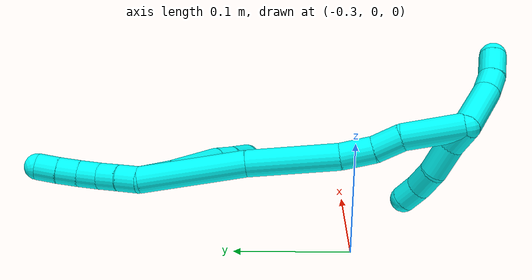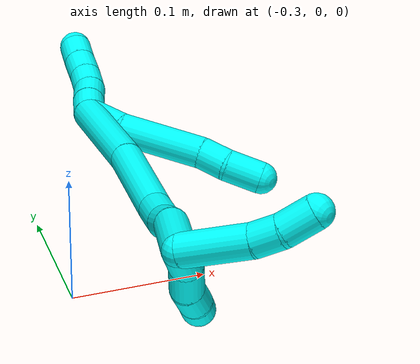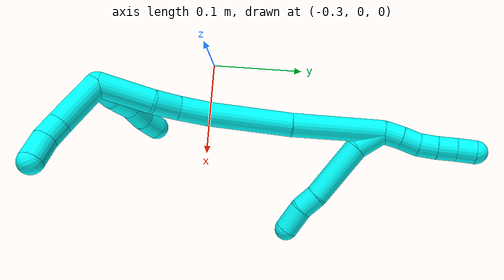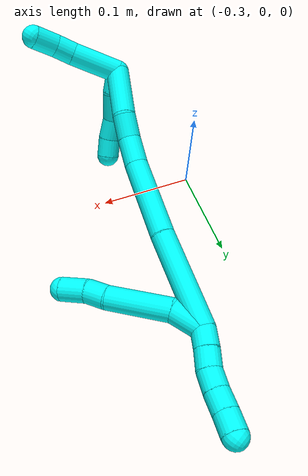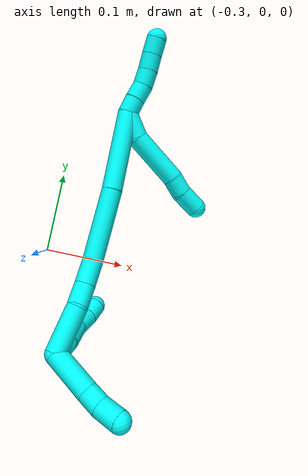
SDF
<sdf version="1.7">
 <world name="default">
  <model name="3">
   <static>0</static>
   <link name="3">
    <collision name="collision-cylinder-e_1_2_8">
     <pose>-0.000571 0.00235 -0.016317 -2.99858 -0.034611 0.474161</pose>
     <geometry><cylinder><radius>0.0125</radius><length>0.03299</length></cylinder></geometry>
     <surface>
      <friction><ode><mu>1.16</mu><mu2>1.16</mu2><slip1>0</slip1><slip2>0</slip2></ode></friction>
      <contact><ode><kp>1e+06</kp><kd>1</kd><max_vel>0</max_vel><min_depth>0.001</min_depth></ode></contact>
     </surface>
    </collision>
    <visual name="visual-cylinder-e_1_2_8">
     <pose>-0.000571 0.00235 -0.016317 -2.99858 -0.034611 0.474161</pose>
     <geometry><cylinder><radius>0.0125</radius><length>0.03299</length></cylinder></geometry>
     <material><ambient>0.003922 1 0.996078 1</ambient></material>
    </visual>
    <collision name="collision-cylinder-e_2_8_9">
     <pose>-0.000441 0.020253 -0.062017 -2.65475 0.021063 -0.084767</pose>
     <geometry><cylinder><radius>0.0125</radius><length>0.066507</length></cylinder></geometry>
     <surface>
      <friction><ode><mu>1.16</mu><mu2>1.16</mu2><slip1>0</slip1><slip2>0</slip2></ode></friction>
      <contact><ode><kp>1e+06</kp><kd>1</kd><max_vel>0</max_vel><min_depth>0.001</min_depth></ode></contact>
     </surface>
    </collision>
    <visual name="visual-cylinder-e_2_8_9">
     <pose>-0.000441 0.020253 -0.062017 -2.65475 0.021063 -0.084767</pose>
     <geometry><cylinder><radius>0.0125</radius><length>0.066507</length></cylinder></geometry>
     <material><ambient>0.003922 1 0.996078 1</ambient></material>
    </visual>
    <collision name="collision-cylinder-e_3_9_10">
     <pose>-0.000986 0.039615 -0.101746 -2.78883 -0.112499 0.612016</pose>
     <geometry><cylinder><radius>0.0125</radius><length>0.02219</length></cylinder></geometry>
     <surface>
      <friction><ode><mu>1.16</mu><mu2>1.16</mu2><slip1>0</slip1><slip2>0</slip2></ode></friction>
      <contact><ode><kp>1e+06</kp><kd>1</kd><max_vel>0</max_vel><min_depth>0.001</min_depth></ode></contact>
     </surface>
    </collision>
    <visual name="visual-cylinder-e_3_9_10">
     <pose>-0.000986 0.039615 -0.101746 -2.78883 -0.112499 0.612016</pose>
     <geometry><cylinder><radius>0.0125</radius><length>0.02219</length></cylinder></geometry>
     <material><ambient>0.003922 1 0.996078 1</ambient></material>
    </visual>
    <collision name="collision-cylinder-e_4_10_6">
     <pose>-0.0032 0.051207 -0.123878 -2.55795 -0.068407 0.226834</pose>
     <geometry><cylinder><radius>0.0125</radius><length>0.028313</length></cylinder></geometry>
     <surface>
      <friction><ode><mu>1.16</mu><mu2>1.16</mu2><slip1>0</slip1><slip2>0</slip2></ode></friction>
      <contact><ode><kp>1e+06</kp><kd>1</kd><max_vel>0</max_vel><min_depth>0.001</min_depth></ode></contact>
     </surface>
    </collision>
    <visual name="visual-cylinder-e_4_10_6">
     <pose>-0.0032 0.051207 -0.123878 -2.55795 -0.068407 0.226834</pose>
     <geometry><cylinder><radius>0.0125</radius><length>0.028313</length></cylinder></geometry>
     <material><ambient>0.003922 1 0.996078 1</ambient></material>
    </visual>
    <collision name="collision-cylinder-e_1_2_11">
     <pose>0.002663 0.006169 0.007406 -0.694499 0.269536 -0.098065</pose>
     <geometry><cylinder><radius>0.0125</radius><length>0.02</length></cylinder></geometry>
     <surface>
      <friction><ode><mu>1.16</mu><mu2>1.16</mu2><slip1>0</slip1><slip2>0</slip2></ode></friction>
      <contact><ode><kp>1e+06</kp><kd>1</kd><max_vel>0</max_vel><min_depth>0.001</min_depth></ode></contact>
     </surface>
    </collision>
    <visual name="visual-cylinder-e_1_2_11">
     <pose>0.002663 0.006169 0.007406 -0.694499 0.269536 -0.098065</pose>
     <geometry><cylinder><radius>0.0125</radius><length>0.02</length></cylinder></geometry>
     <material><ambient>0.003922 1 0.996078 1</ambient></material>
    </visual>
    <collision name="collision-cylinder-e_2_11_12">
     <pose>0.007792 0.019072 0.021782 -0.768235 0.249212 -0.101169</pose>
     <geometry><cylinder><radius>0.0125</radius><length>0.02</length></cylinder></geometry>
     <surface>
      <friction><ode><mu>1.16</mu><mu2>1.16</mu2><slip1>0</slip1><slip2>0</slip2></ode></friction>
      <contact><ode><kp>1e+06</kp><kd>1</kd><max_vel>0</max_vel><min_depth>0.001</min_depth></ode></contact>
     </surface>
    </collision>
    <visual name="visual-cylinder-e_2_11_12">
     <pose>0.007792 0.019072 0.021782 -0.768235 0.249212 -0.101169</pose>
     <geometry><cylinder><radius>0.0125</radius><length>0.02</length></cylinder></geometry>
     <material><ambient>0.003922 1 0.996078 1</ambient></material>
    </visual>
    <collision name="collision-cylinder-e_3_12_13">
     <pose>0.013368 0.030602 0.036956 -0.528981 0.316147 -0.086291</pose>
     <geometry><cylinder><radius>0.0125</radius><length>0.02</length></cylinder></geometry>
     <surface>
      <friction><ode><mu>1.16</mu><mu2>1.16</mu2><slip1>0</slip1><slip2>0</slip2></ode></friction>
      <contact><ode><kp>1e+06</kp><kd>1</kd><max_vel>0</max_vel><min_depth>0.001</min_depth></ode></contact>
     </surface>
    </collision>
    <visual name="visual-cylinder-e_3_12_13">
     <pose>0.013368 0.030602 0.036956 -0.528981 0.316147 -0.086291</pose>
     <geometry><cylinder><radius>0.0125</radius><length>0.02</length></cylinder></geometry>
     <material><ambient>0.003922 1 0.996078 1</ambient></material>
    </visual>
    <collision name="collision-cylinder-e_4_13_14">
     <pose>0.019899 0.03942 0.053654 -0.442188 0.34928 -0.079274</pose>
     <geometry><cylinder><radius>0.0125</radius><length>0.02</length></cylinder></geometry>
     <surface>
      <friction><ode><mu>1.16</mu><mu2>1.16</mu2><slip1>0</slip1><slip2>0</slip2></ode></friction>
      <contact><ode><kp>1e+06</kp><kd>1</kd><max_vel>0</max_vel><min_depth>0.001</min_depth></ode></contact>
     </surface>
    </collision>
    <visual name="visual-cylinder-e_4_13_14">
     <pose>0.019899 0.03942 0.053654 -0.442188 0.34928 -0.079274</pose>
     <geometry><cylinder><radius>0.0125</radius><length>0.02</length></cylinder></geometry>
     <material><ambient>0.003922 1 0.996078 1</ambient></material>
    </visual>
    <collision name="collision-cylinder-e_5_14_5">
     <pose>0.027076 0.047636 0.070411 -0.469768 0.384949 -0.093206</pose>
     <geometry><cylinder><radius>0.0125</radius><length>0.02</length></cylinder></geometry>
     <surface>
      <friction><ode><mu>1.16</mu><mu2>1.16</mu2><slip1>0</slip1><slip2>0</slip2></ode></friction>
      <contact><ode><kp>1e+06</kp><kd>1</kd><max_vel>0</max_vel><min_depth>0.001</min_depth></ode></contact>
     </surface>
    </collision>
    <visual name="visual-cylinder-e_5_14_5">
     <pose>0.027076 0.047636 0.070411 -0.469768 0.384949 -0.093206</pose>
     <geometry><cylinder><radius>0.0125</radius><length>0.02</length></cylinder></geometry>
     <material><ambient>0.003922 1 0.996078 1</ambient></material>
    </visual>
    <collision name="collision-cylinder-e_1_2_15">
     <pose>-0.002388 -0.023424 -0.044065 2.653 -0.047818 -0.191283</pose>
     <geometry><cylinder><radius>0.0125</radius><length>0.099923</length></cylinder></geometry>
     <surface>
      <friction><ode><mu>1.16</mu><mu2>1.16</mu2><slip1>0</slip1><slip2>0</slip2></ode></friction>
      <contact><ode><kp>1e+06</kp><kd>1</kd><max_vel>0</max_vel><min_depth>0.001</min_depth></ode></contact>
     </surface>
    </collision>
    <visual name="visual-cylinder-e_1_2_15">
     <pose>-0.002388 -0.023424 -0.044065 2.653 -0.047818 -0.191283</pose>
     <geometry><cylinder><radius>0.0125</radius><length>0.099923</length></cylinder></geometry>
     <material><ambient>0.003922 1 0.996078 1</ambient></material>
    </visual>
    <collision name="collision-cylinder-e_2_15_16">
     <pose>-0.010088 -0.068382 -0.125023 2.61324 -0.123702 -0.450141</pose>
     <geometry><cylinder><radius>0.0125</radius><length>0.086091</length></cylinder></geometry>
     <surface>
      <friction><ode><mu>1.16</mu><mu2>1.16</mu2><slip1>0</slip1><slip2>0</slip2></ode></friction>
      <contact><ode><kp>1e+06</kp><kd>1</kd><max_vel>0</max_vel><min_depth>0.001</min_depth></ode></contact>
     </surface>
    </collision>
    <visual name="visual-cylinder-e_2_15_16">
     <pose>-0.010088 -0.068382 -0.125023 2.61324 -0.123702 -0.450141</pose>
     <geometry><cylinder><radius>0.0125</radius><length>0.086091</length></cylinder></geometry>
     <material><ambient>0.003922 1 0.996078 1</ambient></material>
    </visual>
    <collision name="collision-cylinder-e_3_16_17">
     <pose>-0.01515 -0.099036 -0.174657 2.5204 0.015859 0.049399</pose>
     <geometry><cylinder><radius>0.0125</radius><length>0.031344</length></cylinder></geometry>
     <surface>
      <friction><ode><mu>1.16</mu><mu2>1.16</mu2><slip1>0</slip1><slip2>0</slip2></ode></friction>
      <contact><ode><kp>1e+06</kp><kd>1</kd><max_vel>0</max_vel><min_depth>0.001</min_depth></ode></contact>
     </surface>
    </collision>
    <visual name="visual-cylinder-e_3_16_17">
     <pose>-0.01515 -0.099036 -0.174657 2.5204 0.015859 0.049399</pose>
     <geometry><cylinder><radius>0.0125</radius><length>0.031344</length></cylinder></geometry>
     <material><ambient>0.003922 1 0.996078 1</ambient></material>
    </visual>
    <collision name="collision-cylinder-e_4_17_18">
     <pose>-0.011737 -0.116734 -0.197402 2.4327 0.235689 0.619257</pose>
     <geometry><cylinder><radius>0.0125</radius><length>0.027102</length></cylinder></geometry>
     <surface>
      <friction><ode><mu>1.16</mu><mu2>1.16</mu2><slip1>0</slip1><slip2>0</slip2></ode></friction>
      <contact><ode><kp>1e+06</kp><kd>1</kd><max_vel>0</max_vel><min_depth>0.001</min_depth></ode></contact>
     </surface>
    </collision>
    <visual name="visual-cylinder-e_4_17_18">
     <pose>-0.011737 -0.116734 -0.197402 2.4327 0.235689 0.619257</pose>
     <geometry><cylinder><radius>0.0125</radius><length>0.027102</length></cylinder></geometry>
     <material><ambient>0.003922 1 0.996078 1</ambient></material>
    </visual>
    <collision name="collision-cylinder-e_5_18_1">
     <pose>-0.009124 -0.143845 -0.228076 2.4107 -0.019832 -0.051819</pose>
     <geometry><cylinder><radius>0.0125</radius><length>0.05554</length></cylinder></geometry>
     <surface>
      <friction><ode><mu>1.16</mu><mu2>1.16</mu2><slip1>0</slip1><slip2>0</slip2></ode></friction>
      <contact><ode><kp>1e+06</kp><kd>1</kd><max_vel>0</max_vel><min_depth>0.001</min_depth></ode></contact>
     </surface>
    </collision>
    <visual name="visual-cylinder-e_5_18_1">
     <pose>-0.009124 -0.143845 -0.228076 2.4107 -0.019832 -0.051819</pose>
     <geometry><cylinder><radius>0.0125</radius><length>0.05554</length></cylinder></geometry>
     <material><ambient>0.003922 1 0.996078 1</ambient></material>
    </visual>
    <collision name="collision-cylinder-e_1_1_19">
     <pose>-0.016653 -0.152918 -0.245999 -1.28787 -0.616323 0.469089</pose>
     <geometry><cylinder><radius>0.0125</radius><length>0.024147</length></cylinder></geometry>
     <surface>
      <friction><ode><mu>1.16</mu><mu2>1.16</mu2><slip1>0</slip1><slip2>0</slip2></ode></friction>
      <contact><ode><kp>1e+06</kp><kd>1</kd><max_vel>0</max_vel><min_depth>0.001</min_depth></ode></contact>
     </surface>
    </collision>
    <visual name="visual-cylinder-e_1_1_19">
     <pose>-0.016653 -0.152918 -0.245999 -1.28787 -0.616323 0.469089</pose>
     <geometry><cylinder><radius>0.0125</radius><length>0.024147</length></cylinder></geometry>
     <material><ambient>0.003922 1 0.996078 1</ambient></material>
    </visual>
    <collision name="collision-cylinder-e_2_19_20">
     <pose>-0.034562 -0.133502 -0.238622 -1.13581 -0.783177 0.515186</pose>
     <geometry><cylinder><radius>0.0125</radius><length>0.030982</length></cylinder></geometry>
     <surface>
      <friction><ode><mu>1.16</mu><mu2>1.16</mu2><slip1>0</slip1><slip2>0</slip2></ode></friction>
      <contact><ode><kp>1e+06</kp><kd>1</kd><max_vel>0</max_vel><min_depth>0.001</min_depth></ode></contact>
     </surface>
    </collision>
    <visual name="visual-cylinder-e_2_19_20">
     <pose>-0.034562 -0.133502 -0.238622 -1.13581 -0.783177 0.515186</pose>
     <geometry><cylinder><radius>0.0125</radius><length>0.030982</length></cylinder></geometry>
     <material><ambient>0.003922 1 0.996078 1</ambient></material>
    </visual>
    <collision name="collision-cylinder-e_3_20_21">
     <pose>-0.052035 -0.113744 -0.231582 -1.32934 -0.575086 0.455451</pose>
     <geometry><cylinder><radius>0.0125</radius><length>0.024061</length></cylinder></geometry>
     <surface>
      <friction><ode><mu>1.16</mu><mu2>1.16</mu2><slip1>0</slip1><slip2>0</slip2></ode></friction>
      <contact><ode><kp>1e+06</kp><kd>1</kd><max_vel>0</max_vel><min_depth>0.001</min_depth></ode></contact>
     </surface>
    </collision>
    <visual name="visual-cylinder-e_3_20_21">
     <pose>-0.052035 -0.113744 -0.231582 -1.32934 -0.575086 0.455451</pose>
     <geometry><cylinder><radius>0.0125</radius><length>0.024061</length></cylinder></geometry>
     <material><ambient>0.003922 1 0.996078 1</ambient></material>
    </visual>
    <collision name="collision-cylinder-e_4_21_4">
     <pose>-0.063518 -0.095672 -0.225235 -1.12679 -0.494697 0.316363</pose>
     <geometry><cylinder><radius>0.0125</radius><length>0.02081</length></cylinder></geometry>
     <surface>
      <friction><ode><mu>1.16</mu><mu2>1.16</mu2><slip1>0</slip1><slip2>0</slip2></ode></friction>
      <contact><ode><kp>1e+06</kp><kd>1</kd><max_vel>0</max_vel><min_depth>0.001</min_depth></ode></contact>
     </surface>
    </collision>
    <visual name="visual-cylinder-e_4_21_4">
     <pose>-0.063518 -0.095672 -0.225235 -1.12679 -0.494697 0.316363</pose>
     <geometry><cylinder><radius>0.0125</radius><length>0.02081</length></cylinder></geometry>
     <material><ambient>0.003922 1 0.996078 1</ambient></material>
    </visual>
    <collision name="collision-cylinder-e_1_1_22">
     <pose>0.002376 -0.153796 -0.270679 -2.76853 0.472957 -1.81284</pose>
     <geometry><cylinder><radius>0.0125</radius><length>0.052907</length></cylinder></geometry>
     <surface>
      <friction><ode><mu>1.16</mu><mu2>1.16</mu2><slip1>0</slip1><slip2>0</slip2></ode></friction>
      <contact><ode><kp>1e+06</kp><kd>1</kd><max_vel>0</max_vel><min_depth>0.001</min_depth></ode></contact>
     </surface>
    </collision>
    <visual name="visual-cylinder-e_1_1_22">
     <pose>0.002376 -0.153796 -0.270679 -2.76853 0.472957 -1.81284</pose>
     <geometry><cylinder><radius>0.0125</radius><length>0.052907</length></cylinder></geometry>
     <material><ambient>0.003922 1 0.996078 1</ambient></material>
    </visual>
    <collision name="collision-cylinder-e_2_22_23">
     <pose>0.020799 -0.142004 -0.300411 -2.75147 0.646951 -2.07652</pose>
     <geometry><cylinder><radius>0.0125</radius><length>0.021146</length></cylinder></geometry>
     <surface>
      <friction><ode><mu>1.16</mu><mu2>1.16</mu2><slip1>0</slip1><slip2>0</slip2></ode></friction>
      <contact><ode><kp>1e+06</kp><kd>1</kd><max_vel>0</max_vel><min_depth>0.001</min_depth></ode></contact>
     </surface>
    </collision>
    <visual name="visual-cylinder-e_2_22_23">
     <pose>0.020799 -0.142004 -0.300411 -2.75147 0.646951 -2.07652</pose>
     <geometry><cylinder><radius>0.0125</radius><length>0.021146</length></cylinder></geometry>
     <material><ambient>0.003922 1 0.996078 1</ambient></material>
    </visual>
    <collision name="collision-cylinder-e_3_23_3">
     <pose>0.036685 -0.133875 -0.315534 -2.54976 0.823197 -1.92231</pose>
     <geometry><cylinder><radius>0.0125</radius><length>0.025948</length></cylinder></geometry>
     <surface>
      <friction><ode><mu>1.16</mu><mu2>1.16</mu2><slip1>0</slip1><slip2>0</slip2></ode></friction>
      <contact><ode><kp>1e+06</kp><kd>1</kd><max_vel>0</max_vel><min_depth>0.001</min_depth></ode></contact>
     </surface>
    </collision>
    <visual name="visual-cylinder-e_3_23_3">
     <pose>0.036685 -0.133875 -0.315534 -2.54976 0.823197 -1.92231</pose>
     <geometry><cylinder><radius>0.0125</radius><length>0.025948</length></cylinder></geometry>
     <material><ambient>0.003922 1 0.996078 1</ambient></material>
    </visual>
    <collision name="collision-sphere-3">
     <pose>0.046199 -0.128954 -0.322854 0 -0 0</pose>
     <geometry><sphere><radius>0.0125</radius></sphere></geometry>
     <surface>
      <friction><ode><mu>1.16</mu><mu2>1.16</mu2><slip1>0</slip1><slip2>0</slip2></ode></friction>
      <contact><ode><kp>1e+06</kp><kd>1</kd><max_vel>0</max_vel><min_depth>0.001</min_depth></ode></contact>
     </surface>
    </collision>
    <visual name="visual-sphere-3">
     <pose>0.046199 -0.128954 -0.322854 0 -0 0</pose>
     <geometry><sphere><radius>0.0125</radius></sphere></geometry>
     <material><ambient>0.003922 1 0.996078 1</ambient></material>
    </visual>
    <collision name="collision-sphere-23">
     <pose>0.027171 -0.138796 -0.308213 0 -0 0</pose>
     <geometry><sphere><radius>0.0125</radius></sphere></geometry>
     <surface>
      <friction><ode><mu>1.16</mu><mu2>1.16</mu2><slip1>0</slip1><slip2>0</slip2></ode></friction>
      <contact><ode><kp>1e+06</kp><kd>1</kd><max_vel>0</max_vel><min_depth>0.001</min_depth></ode></contact>
     </surface>
    </collision>
    <visual name="visual-sphere-23">
     <pose>0.027171 -0.138796 -0.308213 0 -0 0</pose>
     <geometry><sphere><radius>0.0125</radius></sphere></geometry>
     <material><ambient>0.003922 1 0.996078 1</ambient></material>
    </visual>
    <collision name="collision-sphere-22">
     <pose>0.014426 -0.145213 -0.292608 0 -0 0</pose>
     <geometry><sphere><radius>0.0125</radius></sphere></geometry>
     <surface>
      <friction><ode><mu>1.16</mu><mu2>1.16</mu2><slip1>0</slip1><slip2>0</slip2></ode></friction>
      <contact><ode><kp>1e+06</kp><kd>1</kd><max_vel>0</max_vel><min_depth>0.001</min_depth></ode></contact>
     </surface>
    </collision>
    <visual name="visual-sphere-22">
     <pose>0.014426 -0.145213 -0.292608 0 -0 0</pose>
     <geometry><sphere><radius>0.0125</radius></sphere></geometry>
     <material><ambient>0.003922 1 0.996078 1</ambient></material>
    </visual>
    <collision name="collision-sphere-4">
     <pose>-0.068458 -0.087402 -0.221301 0 -0 0</pose>
     <geometry><sphere><radius>0.0125</radius></sphere></geometry>
     <surface>
      <friction><ode><mu>1.16</mu><mu2>1.16</mu2><slip1>0</slip1><slip2>0</slip2></ode></friction>
      <contact><ode><kp>1e+06</kp><kd>1</kd><max_vel>0</max_vel><min_depth>0.001</min_depth></ode></contact>
     </surface>
    </collision>
    <visual name="visual-sphere-4">
     <pose>-0.068458 -0.087402 -0.221301 0 -0 0</pose>
     <geometry><sphere><radius>0.0125</radius></sphere></geometry>
     <material><ambient>0.003922 1 0.996078 1</ambient></material>
    </visual>
    <collision name="collision-sphere-21">
     <pose>-0.058578 -0.103942 -0.229168 0 -0 0</pose>
     <geometry><sphere><radius>0.0125</radius></sphere></geometry>
     <surface>
      <friction><ode><mu>1.16</mu><mu2>1.16</mu2><slip1>0</slip1><slip2>0</slip2></ode></friction>
      <contact><ode><kp>1e+06</kp><kd>1</kd><max_vel>0</max_vel><min_depth>0.001</min_depth></ode></contact>
     </surface>
    </collision>
    <visual name="visual-sphere-21">
     <pose>-0.058578 -0.103942 -0.229168 0 -0 0</pose>
     <geometry><sphere><radius>0.0125</radius></sphere></geometry>
     <material><ambient>0.003922 1 0.996078 1</ambient></material>
    </visual>
    <collision name="collision-sphere-20">
     <pose>-0.045491 -0.123546 -0.233996 0 -0 0</pose>
     <geometry><sphere><radius>0.0125</radius></sphere></geometry>
     <surface>
      <friction><ode><mu>1.16</mu><mu2>1.16</mu2><slip1>0</slip1><slip2>0</slip2></ode></friction>
      <contact><ode><kp>1e+06</kp><kd>1</kd><max_vel>0</max_vel><min_depth>0.001</min_depth></ode></contact>
     </surface>
    </collision>
    <visual name="visual-sphere-20">
     <pose>-0.045491 -0.123546 -0.233996 0 -0 0</pose>
     <geometry><sphere><radius>0.0125</radius></sphere></geometry>
     <material><ambient>0.003922 1 0.996078 1</ambient></material>
    </visual>
    <collision name="collision-sphere-11">
     <pose>0.005326 0.012338 0.014813 0 -0 0</pose>
     <geometry><sphere><radius>0.0125</radius></sphere></geometry>
     <surface>
      <friction><ode><mu>1.16</mu><mu2>1.16</mu2><slip1>0</slip1><slip2>0</slip2></ode></friction>
      <contact><ode><kp>1e+06</kp><kd>1</kd><max_vel>0</max_vel><min_depth>0.001</min_depth></ode></contact>
     </surface>
    </collision>
    <visual name="visual-sphere-11">
     <pose>0.005326 0.012338 0.014813 0 -0 0</pose>
     <geometry><sphere><radius>0.0125</radius></sphere></geometry>
     <material><ambient>0.003922 1 0.996078 1</ambient></material>
    </visual>
    <collision name="collision-sphere-6">
     <pose>-0.004167 0.05899 -0.135663 0 -0 0</pose>
     <geometry><sphere><radius>0.0125</radius></sphere></geometry>
     <surface>
      <friction><ode><mu>1.16</mu><mu2>1.16</mu2><slip1>0</slip1><slip2>0</slip2></ode></friction>
      <contact><ode><kp>1e+06</kp><kd>1</kd><max_vel>0</max_vel><min_depth>0.001</min_depth></ode></contact>
     </surface>
    </collision>
    <visual name="visual-sphere-6">
     <pose>-0.004167 0.05899 -0.135663 0 -0 0</pose>
     <geometry><sphere><radius>0.0125</radius></sphere></geometry>
     <material><ambient>0.003922 1 0.996078 1</ambient></material>
    </visual>
    <collision name="collision-sphere-10">
     <pose>-0.002232 0.043424 -0.112092 0 -0 0</pose>
     <geometry><sphere><radius>0.0125</radius></sphere></geometry>
     <surface>
      <friction><ode><mu>1.16</mu><mu2>1.16</mu2><slip1>0</slip1><slip2>0</slip2></ode></friction>
      <contact><ode><kp>1e+06</kp><kd>1</kd><max_vel>0</max_vel><min_depth>0.001</min_depth></ode></contact>
     </surface>
    </collision>
    <visual name="visual-sphere-10">
     <pose>-0.002232 0.043424 -0.112092 0 -0 0</pose>
     <geometry><sphere><radius>0.0125</radius></sphere></geometry>
     <material><ambient>0.003922 1 0.996078 1</ambient></material>
    </visual>
    <collision name="collision-sphere-9">
     <pose>0.000259 0.035806 -0.091401 0 -0 0</pose>
     <geometry><sphere><radius>0.0125</radius></sphere></geometry>
     <surface>
      <friction><ode><mu>1.16</mu><mu2>1.16</mu2><slip1>0</slip1><slip2>0</slip2></ode></friction>
      <contact><ode><kp>1e+06</kp><kd>1</kd><max_vel>0</max_vel><min_depth>0.001</min_depth></ode></contact>
     </surface>
    </collision>
    <visual name="visual-sphere-9">
     <pose>0.000259 0.035806 -0.091401 0 -0 0</pose>
     <geometry><sphere><radius>0.0125</radius></sphere></geometry>
     <material><ambient>0.003922 1 0.996078 1</ambient></material>
    </visual>
    <collision name="collision-sphere-2">
     <geometry><sphere><radius>0.0125</radius></sphere></geometry>
     <surface>
      <friction><ode><mu>1.16</mu><mu2>1.16</mu2><slip1>0</slip1><slip2>0</slip2></ode></friction>
      <contact><ode><kp>1e+06</kp><kd>1</kd><max_vel>0</max_vel><min_depth>0.001</min_depth></ode></contact>
     </surface>
    </collision>
    <visual name="visual-sphere-2">
     <geometry><sphere><radius>0.0125</radius></sphere></geometry>
     <material><ambient>0.003922 1 0.996078 1</ambient></material>
    </visual>
    <collision name="collision-sphere-19">
     <pose>-0.023632 -0.143458 -0.243249 0 -0 0</pose>
     <geometry><sphere><radius>0.0125</radius></sphere></geometry>
     <surface>
      <friction><ode><mu>1.16</mu><mu2>1.16</mu2><slip1>0</slip1><slip2>0</slip2></ode></friction>
      <contact><ode><kp>1e+06</kp><kd>1</kd><max_vel>0</max_vel><min_depth>0.001</min_depth></ode></contact>
     </surface>
    </collision>
    <visual name="visual-sphere-19">
     <pose>-0.023632 -0.143458 -0.243249 0 -0 0</pose>
     <geometry><sphere><radius>0.0125</radius></sphere></geometry>
     <material><ambient>0.003922 1 0.996078 1</ambient></material>
    </visual>
    <collision name="collision-sphere-8">
     <pose>-0.001142 0.004699 -0.032634 0 -0 0</pose>
     <geometry><sphere><radius>0.0125</radius></sphere></geometry>
     <surface>
      <friction><ode><mu>1.16</mu><mu2>1.16</mu2><slip1>0</slip1><slip2>0</slip2></ode></friction>
      <contact><ode><kp>1e+06</kp><kd>1</kd><max_vel>0</max_vel><min_depth>0.001</min_depth></ode></contact>
     </surface>
    </collision>
    <visual name="visual-sphere-8">
     <pose>-0.001142 0.004699 -0.032634 0 -0 0</pose>
     <geometry><sphere><radius>0.0125</radius></sphere></geometry>
     <material><ambient>0.003922 1 0.996078 1</ambient></material>
    </visual>
    <collision name="collision-sphere-12">
     <pose>0.010258 0.025806 0.028751 0 -0 0</pose>
     <geometry><sphere><radius>0.0125</radius></sphere></geometry>
     <surface>
      <friction><ode><mu>1.16</mu><mu2>1.16</mu2><slip1>0</slip1><slip2>0</slip2></ode></friction>
      <contact><ode><kp>1e+06</kp><kd>1</kd><max_vel>0</max_vel><min_depth>0.001</min_depth></ode></contact>
     </surface>
    </collision>
    <visual name="visual-sphere-12">
     <pose>0.010258 0.025806 0.028751 0 -0 0</pose>
     <geometry><sphere><radius>0.0125</radius></sphere></geometry>
     <material><ambient>0.003922 1 0.996078 1</ambient></material>
    </visual>
    <collision name="collision-sphere-13">
     <pose>0.016477 0.035399 0.045162 0 -0 0</pose>
     <geometry><sphere><radius>0.0125</radius></sphere></geometry>
     <surface>
      <friction><ode><mu>1.16</mu><mu2>1.16</mu2><slip1>0</slip1><slip2>0</slip2></ode></friction>
      <contact><ode><kp>1e+06</kp><kd>1</kd><max_vel>0</max_vel><min_depth>0.001</min_depth></ode></contact>
     </surface>
    </collision>
    <visual name="visual-sphere-13">
     <pose>0.016477 0.035399 0.045162 0 -0 0</pose>
     <geometry><sphere><radius>0.0125</radius></sphere></geometry>
     <material><ambient>0.003922 1 0.996078 1</ambient></material>
    </visual>
    <collision name="collision-sphere-14">
     <pose>0.023321 0.04344 0.062147 0 -0 0</pose>
     <geometry><sphere><radius>0.0125</radius></sphere></geometry>
     <surface>
      <friction><ode><mu>1.16</mu><mu2>1.16</mu2><slip1>0</slip1><slip2>0</slip2></ode></friction>
      <contact><ode><kp>1e+06</kp><kd>1</kd><max_vel>0</max_vel><min_depth>0.001</min_depth></ode></contact>
     </surface>
    </collision>
    <visual name="visual-sphere-14">
     <pose>0.023321 0.04344 0.062147 0 -0 0</pose>
     <geometry><sphere><radius>0.0125</radius></sphere></geometry>
     <material><ambient>0.003922 1 0.996078 1</ambient></material>
    </visual>
    <collision name="collision-sphere-5">
     <pose>0.030831 0.051831 0.078675 0 -0 0</pose>
     <geometry><sphere><radius>0.0125</radius></sphere></geometry>
     <surface>
      <friction><ode><mu>1.16</mu><mu2>1.16</mu2><slip1>0</slip1><slip2>0</slip2></ode></friction>
      <contact><ode><kp>1e+06</kp><kd>1</kd><max_vel>0</max_vel><min_depth>0.001</min_depth></ode></contact>
     </surface>
    </collision>
    <visual name="visual-sphere-5">
     <pose>0.030831 0.051831 0.078675 0 -0 0</pose>
     <geometry><sphere><radius>0.0125</radius></sphere></geometry>
     <material><ambient>0.003922 1 0.996078 1</ambient></material>
    </visual>
    <collision name="collision-sphere-15">
     <pose>-0.004776 -0.046848 -0.088131 0 -0 0</pose>
     <geometry><sphere><radius>0.0125</radius></sphere></geometry>
     <surface>
      <friction><ode><mu>1.16</mu><mu2>1.16</mu2><slip1>0</slip1><slip2>0</slip2></ode></friction>
      <contact><ode><kp>1e+06</kp><kd>1</kd><max_vel>0</max_vel><min_depth>0.001</min_depth></ode></contact>
     </surface>
    </collision>
    <visual name="visual-sphere-15">
     <pose>-0.004776 -0.046848 -0.088131 0 -0 0</pose>
     <geometry><sphere><radius>0.0125</radius></sphere></geometry>
     <material><ambient>0.003922 1 0.996078 1</ambient></material>
    </visual>
    <collision name="collision-sphere-16">
     <pose>-0.015399 -0.089916 -0.161914 0 -0 0</pose>
     <geometry><sphere><radius>0.0125</radius></sphere></geometry>
     <surface>
      <friction><ode><mu>1.16</mu><mu2>1.16</mu2><slip1>0</slip1><slip2>0</slip2></ode></friction>
      <contact><ode><kp>1e+06</kp><kd>1</kd><max_vel>0</max_vel><min_depth>0.001</min_depth></ode></contact>
     </surface>
    </collision>
    <visual name="visual-sphere-16">
     <pose>-0.015399 -0.089916 -0.161914 0 -0 0</pose>
     <geometry><sphere><radius>0.0125</radius></sphere></geometry>
     <material><ambient>0.003922 1 0.996078 1</ambient></material>
    </visual>
    <collision name="collision-sphere-17">
     <pose>-0.014902 -0.108156 -0.187399 0 -0 0</pose>
     <geometry><sphere><radius>0.0125</radius></sphere></geometry>
     <surface>
      <friction><ode><mu>1.16</mu><mu2>1.16</mu2><slip1>0</slip1><slip2>0</slip2></ode></friction>
      <contact><ode><kp>1e+06</kp><kd>1</kd><max_vel>0</max_vel><min_depth>0.001</min_depth></ode></contact>
     </surface>
    </collision>
    <visual name="visual-sphere-17">
     <pose>-0.014902 -0.108156 -0.187399 0 -0 0</pose>
     <geometry><sphere><radius>0.0125</radius></sphere></geometry>
     <material><ambient>0.003922 1 0.996078 1</ambient></material>
    </visual>
    <collision name="collision-sphere-18">
     <pose>-0.008573 -0.125311 -0.207404 0 -0 0</pose>
     <geometry><sphere><radius>0.0125</radius></sphere></geometry>
     <surface>
      <friction><ode><mu>1.16</mu><mu2>1.16</mu2><slip1>0</slip1><slip2>0</slip2></ode></friction>
      <contact><ode><kp>1e+06</kp><kd>1</kd><max_vel>0</max_vel><min_depth>0.001</min_depth></ode></contact>
     </surface>
    </collision>
    <visual name="visual-sphere-18">
     <pose>-0.008573 -0.125311 -0.207404 0 -0 0</pose>
     <geometry><sphere><radius>0.0125</radius></sphere></geometry>
     <material><ambient>0.003922 1 0.996078 1</ambient></material>
    </visual>
    <collision name="collision-sphere-1">
     <pose>-0.009674 -0.162379 -0.248749 0 -0 0</pose>
     <geometry><sphere><radius>0.0125</radius></sphere></geometry>
     <surface>
      <friction><ode><mu>1.16</mu><mu2>1.16</mu2><slip1>0</slip1><slip2>0</slip2></ode></friction>
      <contact><ode><kp>1e+06</kp><kd>1</kd><max_vel>0</max_vel><min_depth>0.001</min_depth></ode></contact>
     </surface>
    </collision>
    <visual name="visual-sphere-1">
     <pose>-0.009674 -0.162379 -0.248749 0 -0 0</pose>
     <geometry><sphere><radius>0.0125</radius></sphere></geometry>
     <material><ambient>0.003922 1 0.996078 1</ambient></material>
    </visual>
    <inertial>
     <pose>-0.004908 -0.057391 -0.130313 0 -0 0</pose>
     <mass>0.75</mass>
     <inertia>
      <ixx>0.000153</ixx>
      <ixy>0</ixy>
      <ixz>0</ixz>
      <iyy>-0.000193</iyy>
      <iyz>0</iyz>
      <izz>2.9e-05</izz>
     </inertia>
    </inertial>
   </link>
   <pose>-0.232766 0.189927 0.035304 -1.63355 -1.16456 0.548782</pose>
  </model>
 </world>
</sdf>
